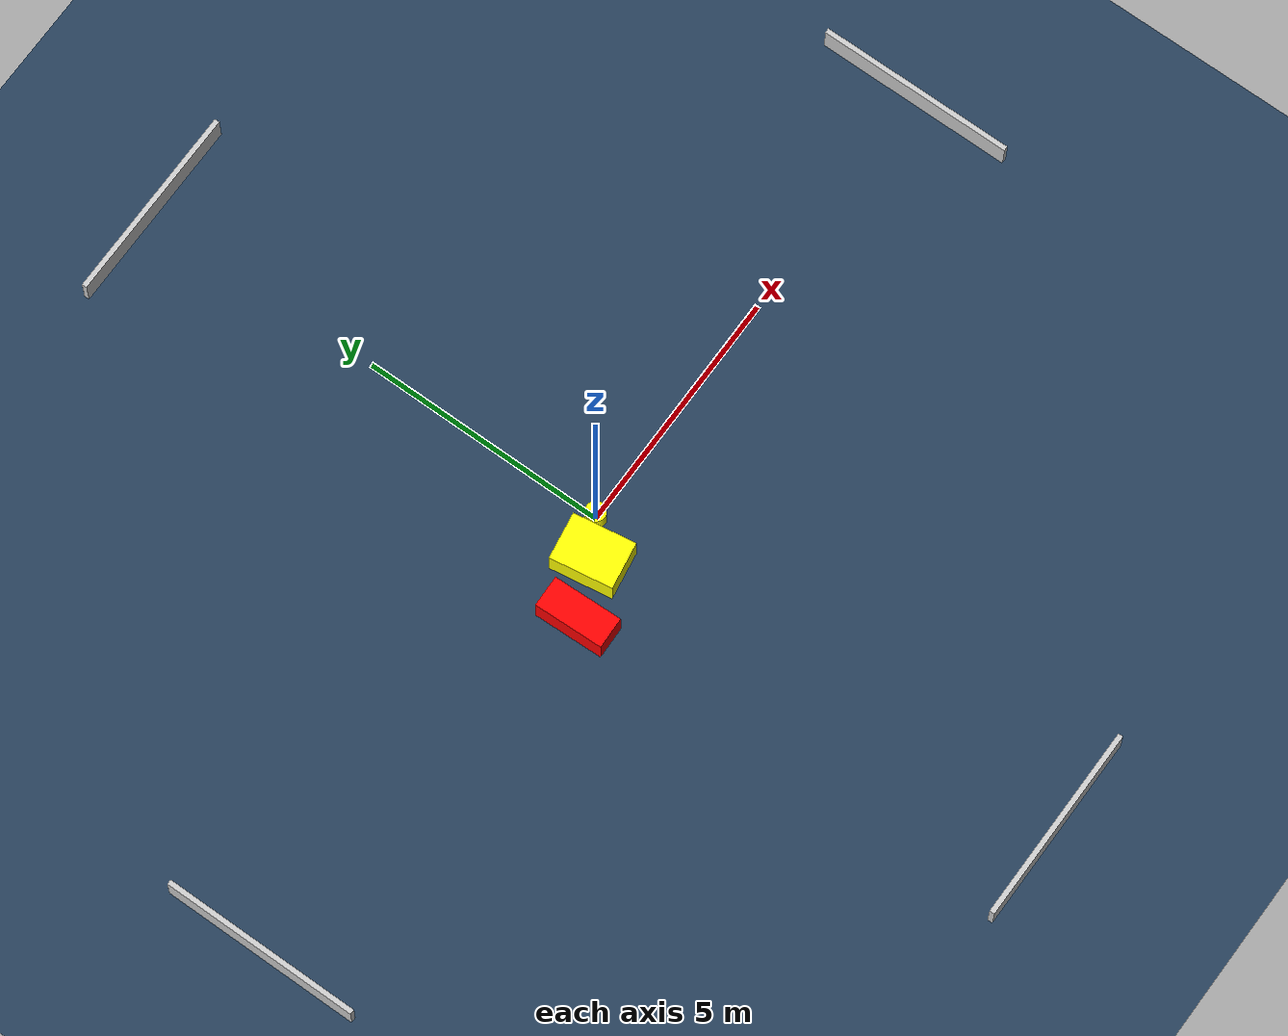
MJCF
<?xml version="1.0" ?>
<mujoco model="generated_environment">
  <option timestep="0.01" integrator="RK4" cone="elliptic"/>
  <default>
    <geom density="1"/>
  </default>
  <asset>
    <texture builtin="gradient" height="3072" name="skybox" rgb1="0.3 0.5 0.7" rgb2="0 0 0" type="skybox" width="512"/>
    <texture builtin="checker" height="300" name="groundplane" rgb1="0.2 0.3 0.4" rgb2="0.1 0.2 0.3" type="2d" width="300"/>
    <material name="groundplane" reflectance="0.2" texrepeat="5 5" texture="groundplane"/>
  </asset>
  <worldbody>
    <light dir="0 0 -1" directional="true" pos="0 0 1.5"/>
    <geom condim="3" friction="0.5 0.005 0.001" material="groundplane" name="floor" pos="0 0 0" size="0 0 0.05" type="plane"/>
    <body name="walls">
      <geom name="wall_1" condim="4" pos="-10.0 0.0 0.3" rgba="0.800000011920929 0.800000011920929 0.800000011920929 1.0" size="0.05 2.0 0.3" type="box"/>
      <geom name="wall_2" condim="4" pos="10.0 0.0 0.3" rgba="0.800000011920929 0.800000011920929 0.800000011920929 1.0" size="0.05 2.0 0.3" type="box"/>
      <geom name="wall_3" condim="4" pos="0.0 -10.0 0.3" rgba="0.800000011920929 0.800000011920929 0.800000011920929 1.0" size="2.0 0.05 0.3" type="box"/>
      <geom name="wall_4" condim="4" pos="0.0 10.0 0.3" rgba="0.800000011920929 0.800000011920929 0.800000011920929 1.0" size="2.0 0.05 0.3" type="box"/>
    </body>
    <body name="robot">
      <joint name="joint_x" type="slide" pos="0 0 0" axis="1 0 0"/>
      <joint name="joint_y" type="slide" pos="0 0 0" axis="0 1 0"/>
      <geom name="robot" type="cylinder" pos="0.0 0.0 0.2" size="0.2 0.2 0.0" mass="5.0" friction="1.0 0.005 0.0001" condim="4" rgba="1.0 1.0 0.0 1.0"/>
    </body>
    <body name="obstacle_1_movable">
      <geom name="obstacle_1_movable" condim="4" pos="-0.6864414151482542 -0.425314361997689 0.3" euler="0 0 188.8610279450765" friction="0.0 0.005 0.001" rgba="1.0 1.0 0.0 1.0" size="0.47755596262985445 0.6349009289512106 0.3" type="box" mass="0.1"/>
      <joint type="free"/>
    </body>
    <body name="obstacle_2_static">
      <geom name="obstacle_2_static" condim="4" pos="-1.7738786422352437 -0.8906502066363226 0.3" euler="0 0 271.7060625469301" friction="0.0 0.005 0.001" rgba="1.0 0.0 0.0 1.0" size="0.7024444342399838 0.31792490595307393 0.3" type="box"/>
    </body>
  </worldbody>
  <actuator>
    <motor name="actuator_x" joint="joint_x" gear="1" ctrlrange="-1 1"/>
    <motor name="actuator_y" joint="joint_y" gear="1" ctrlrange="-1 1"/>
  </actuator>
</mujoco>
